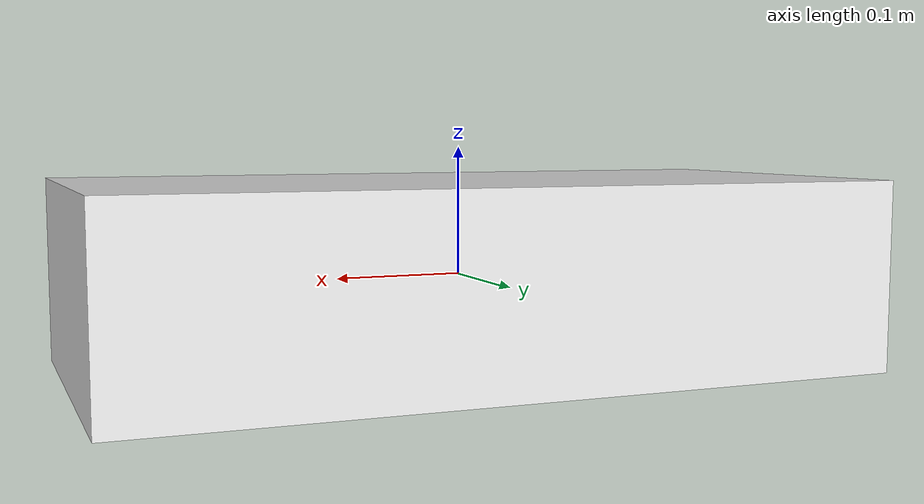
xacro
<?xml version="1.0"?>
<robot name="matsyota_asv" xmlns:xacro="http://ros.org/wiki/xacro">

  <xacro:arg name="namespace" default="asv"/>

  <!-- Dummy root link to avoid KDL inertia error -->
  <link name="$(arg namespace)/base_footprint" />

  <joint name="$(arg namespace)/base_joint" type="fixed">
    <parent link="$(arg namespace)/base_footprint" />
    <child link="$(arg namespace)/base_link" />
    <origin xyz="0 0 0" rpy="0 0 0" />
  </joint>

  <link name="$(arg namespace)/base_link">
    <visual>
      <geometry>
        <box size="0.6 0.3 0.15"/>
      </geometry>
      <material name="white">
        <color rgba="0.9 0.9 0.9 1.0"/>
      </material>
    </visual>
    <collision>
      <geometry>
        <box size="0.6 0.3 0.15"/>
      </geometry>
    </collision>
    <inertial>
      <mass value="2.0"/>
      <inertia ixx="0.02" ixy="0.0" ixz="0.0" iyy="0.06" iyz="0.0" izz="0.08"/>
    </inertial>
  </link>

  <gazebo reference="$(arg namespace)/base_link">
    <gravity>0</gravity>
    <material>Gazebo/White</material>
  </gazebo>

  <gazebo>
    <plugin name="planar_move" filename="libgazebo_ros_planar_move.so">
      <ros>
        <namespace>/$(arg namespace)</namespace>
        <remapping>cmd_vel:=cmd_vel</remapping>
        <remapping>odom:=odom</remapping>
      </ros>
      <update_rate>50.0</update_rate>
      <publish_rate>50.0</publish_rate>
      <publish_odom>true</publish_odom>
      <publish_odom_tf>true</publish_odom_tf>
      <robot_base_frame>$(arg namespace)/base_link</robot_base_frame>
      <odometry_frame>$(arg namespace)/odom</odometry_frame>
    </plugin>
  </gazebo>

  <gazebo reference="$(arg namespace)/base_link">
    <sensor name="gps_sensor" type="gps">
      <always_on>true</always_on>
      <update_rate>10.0</update_rate>
      <plugin name="gps_plugin" filename="libgazebo_ros_gps_sensor.so">
        <ros>
          <namespace>/$(arg namespace)</namespace>
          <remapping>~/out:=gps/fix</remapping>
        </ros>
        <frame_name>$(arg namespace)/base_link</frame_name>
      </plugin>
    </sensor>
  </gazebo>

</robot>
